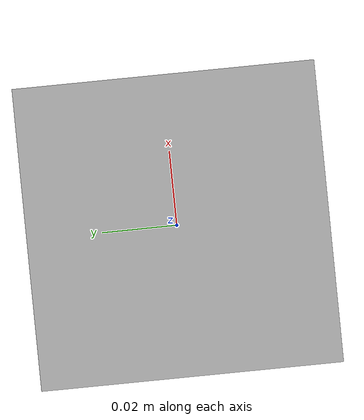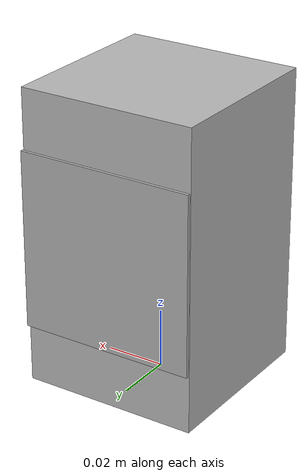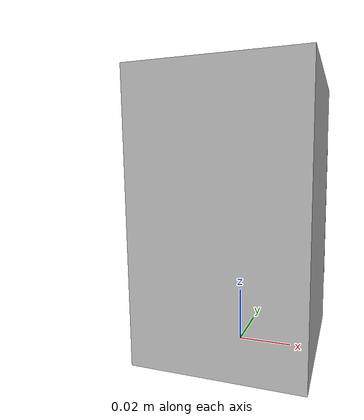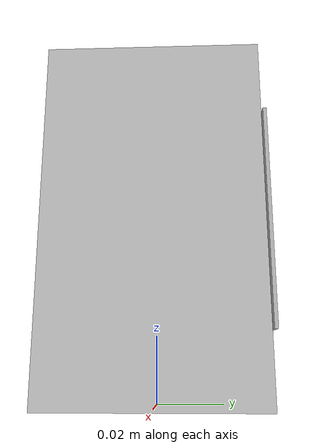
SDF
<?xml version='1.0'?>
<sdf version='1.6'>
  <model name='object1'>
    <link name='link_1'>
      <pose frame=''>0 0.031 0.05 0 -0 0</pose>
      <inertial>
        <mass>0.001</mass>
        <inertia>
          <ixx>0.001</ixx>
          <ixy>0</ixy>
          <ixz>0</ixz>
          <iyy>0.001</iyy>
          <iyz>0</iyz>
          <izz>0.001</izz>
        </inertia>
        <pose frame=''>0 0 0 0 -0 0</pose>
      </inertial>
      <gravity>1</gravity>
      <self_collide>0</self_collide>
      <kinematic>0</kinematic>
      <visual name='visual'>
        <pose frame=''>0 0 0 0 -0 0</pose>
        <geometry>
          <box>
            <size>0.06 0.001 0.06</size>
          </box>
        </geometry>
        <material>
          <lighting>1</lighting>
          <script>
	    <uri>model://object_marker/materials/scripts</uri>
 	    <uri>model://object_marker/materials/textures</uri>
            <name>object/marker</name>
          </script>
          <ambient>0.3 0.3 0.3 1</ambient>
          <diffuse>0.7 0.7 0.7 1</diffuse>
          <specular>0.01 0.01 0.01 1</specular>
          <emissive>0 0 0 1</emissive>
        </material>
        <cast_shadows>1</cast_shadows>
        <transparency>0</transparency>
      </visual>
      <collision name='collision'>
        <laser_retro>0</laser_retro>
        <max_contacts>10</max_contacts>
        <pose frame=''>0 0 0 0 -0 0</pose>
        <geometry>
          <box>
            <size>0.06 0.001 0.06</size>
          </box>
        </geometry>
        <surface>
          <friction>
            <ode>
              <mu>1</mu>
              <mu2>1</mu2>
              <fdir1>0 0 0</fdir1>
              <slip1>0</slip1>
              <slip2>0</slip2>
            </ode>
            <torsional>
              <coefficient>1</coefficient>
              <patch_radius>0</patch_radius>
              <surface_radius>0</surface_radius>
              <use_patch_radius>1</use_patch_radius>
              <ode>
                <slip>0</slip>
              </ode>
            </torsional>
          </friction>
          <bounce>
            <restitution_coefficient>0</restitution_coefficient>
            <threshold>1e+06</threshold>
          </bounce>
          <contact>
            <collide_without_contact>0</collide_without_contact>
            <collide_without_contact_bitmask>1</collide_without_contact_bitmask>
            <collide_bitmask>1</collide_bitmask>
            <ode>
              <soft_cfm>0</soft_cfm>
              <soft_erp>0.2</soft_erp>
              <kp>1e+13</kp>
              <kd>1</kd>
              <max_vel>0.01</max_vel>
              <min_depth>0</min_depth>
            </ode>
            <bullet>
              <split_impulse>1</split_impulse>
              <split_impulse_penetration_threshold>-0.01</split_impulse_penetration_threshold>
              <soft_cfm>0</soft_cfm>
              <soft_erp>0.2</soft_erp>
              <kp>1e+13</kp>
              <kd>1</kd>
            </bullet>
          </contact>
        </surface>
      </collision>
    </link>
    <link name='link_1_clone'>
      <pose frame=''>0 0 0.05 0 -0 0</pose>
      <inertial>
        <mass>0.3</mass>
        <inertia>
          <ixx>0.166667</ixx>
          <ixy>0</ixy>
          <ixz>0</ixz>
          <iyy>0.166667</iyy>
          <iyz>0</iyz>
          <izz>0.166667</izz>
        </inertia>
        <pose frame=''>0 0 0 0 -0 0</pose>
      </inertial>
      <self_collide>0</self_collide>
      <kinematic>0</kinematic>
      <gravity>1</gravity>
      <visual name='visual'>
        <pose frame=''>0 0 0 0 -0 0</pose>
        <geometry>
          <box>
            <size>0.06 0.06 0.1</size>
          </box>
        </geometry>
      </visual>
      <collision name='collision'>
        <laser_retro>0</laser_retro>
        <max_contacts>10</max_contacts>
        <pose frame=''>0 0 0 0 -0 0</pose>
        <geometry>
          <box>
            <size>0.06 0.06 0.1</size>
          </box>
        </geometry>
        <surface>
          <friction>
            <ode>
              <mu>1</mu>
              <mu2>1</mu2>
              <fdir1>0 0 0</fdir1>
              <slip1>0</slip1>
              <slip2>0</slip2>
            </ode>
            <torsional>
              <coefficient>1</coefficient>
              <patch_radius>0</patch_radius>
              <surface_radius>0</surface_radius>
              <use_patch_radius>1</use_patch_radius>
              <ode>
                <slip>0</slip>
              </ode>
            </torsional>
          </friction>
          <bounce>
            <restitution_coefficient>0</restitution_coefficient>
            <threshold>1e+06</threshold>
          </bounce>
          <contact>
            <collide_without_contact>0</collide_without_contact>
            <collide_without_contact_bitmask>1</collide_without_contact_bitmask>
            <collide_bitmask>1</collide_bitmask>
            <ode>
              <soft_cfm>0</soft_cfm>
              <soft_erp>0.2</soft_erp>
              <kp>1e+13</kp>
              <kd>1</kd>
              <max_vel>0.01</max_vel>
              <min_depth>0</min_depth>
            </ode>
            <bullet>
              <split_impulse>1</split_impulse>
              <split_impulse_penetration_threshold>-0.01</split_impulse_penetration_threshold>
              <soft_cfm>0</soft_cfm>
              <soft_erp>0.2</soft_erp>
              <kp>1e+13</kp>
              <kd>1</kd>
            </bullet>
          </contact>
        </surface>
      </collision>
    </link>
    <joint name='link_1_JOINT_0' type='fixed'>
      <parent>link_1_clone</parent>
      <child>link_1</child>
      <pose frame=''>0 0 0 0 -0 0</pose>
      <physics>
        <ode>
          <limit>
            <cfm>0</cfm>
            <erp>0.2</erp>
          </limit>
          <suspension>
            <cfm>0</cfm>
            <erp>0.2</erp>
          </suspension>
        </ode>
      </physics>
    </joint>
    <static>0</static>
    <allow_auto_disable>1</allow_auto_disable>
  </model>
</sdf>
